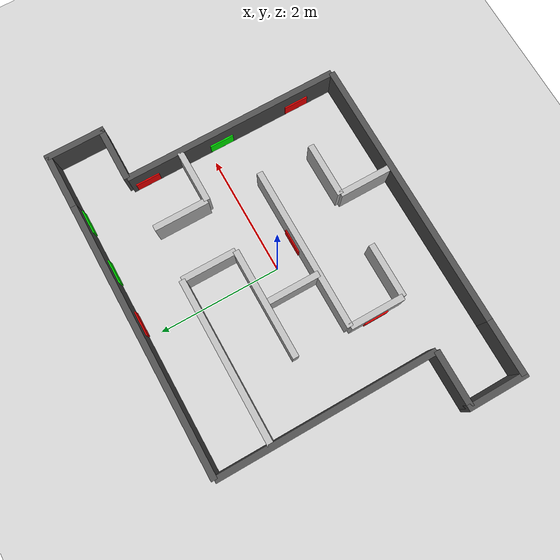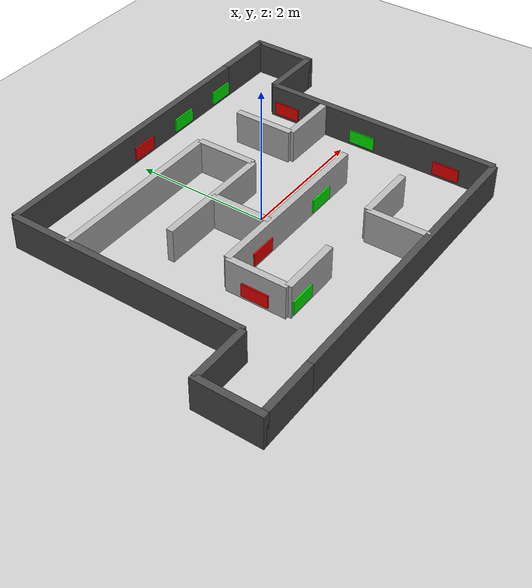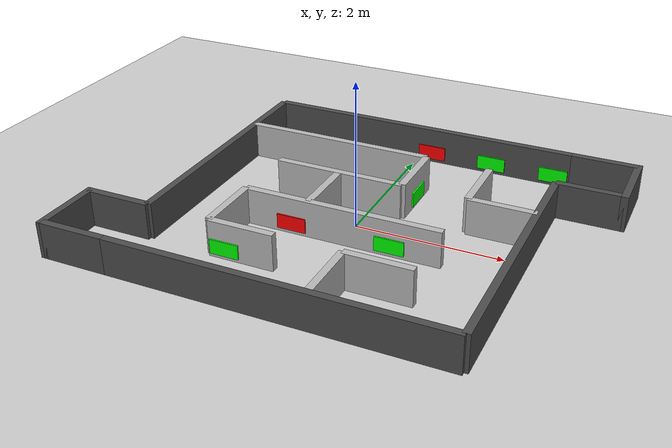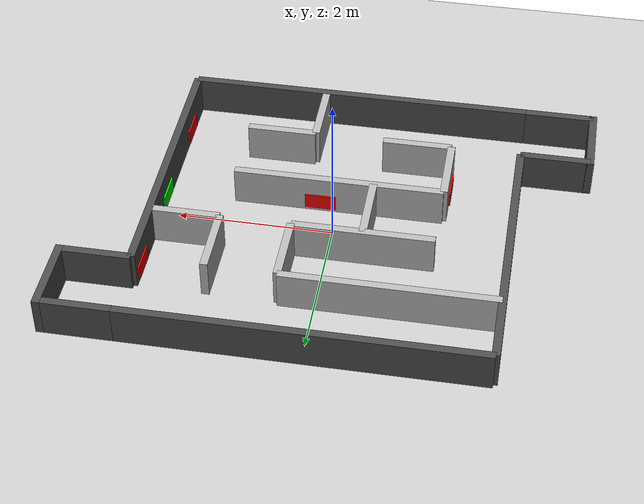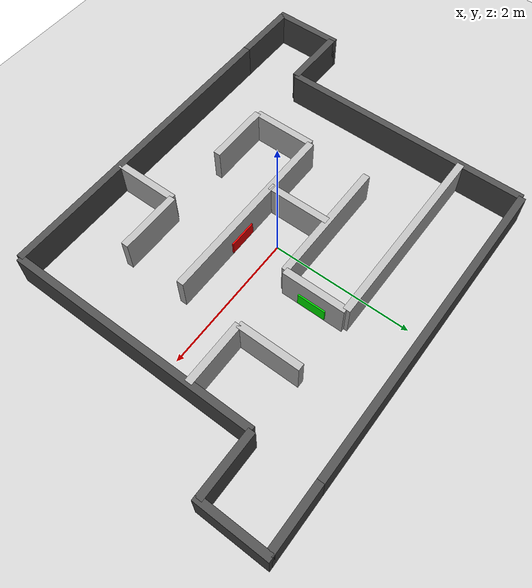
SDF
<?xml version="1.0" ?>
<sdf version="1.8">
  <world name="maze_world">
    <physics name="1ms" type="ignored">
      <max_step_size>0.001</max_step_size>
      <real_time_factor>1.0</real_time_factor>
    </physics>
    <plugin name="gz::sim::systems::Physics" filename="gz-sim-physics-system"/>
    <plugin name="gz::sim::systems::UserCommands" filename="gz-sim-user-commands-system"/>
    <plugin name="gz::sim::systems::SceneBroadcaster" filename="gz-sim-scene-broadcaster-system"/>
    <plugin name="gz::sim::systems::Sensors" filename="gz-sim-sensors-system">
      <render_engine>ogre2</render_engine>
    </plugin>

    <light type="directional" name="sun">
      <cast_shadows>true</cast_shadows>
      <pose>0 0 10 0 0 0</pose>
      <diffuse>0.8 0.8 0.8 1</diffuse>
      <specular>0.2 0.2 0.2 1</specular>
      <direction>-0.5 0.1 -0.9</direction>
    </light>

    <model name="ground_plane">
      <static>true</static>
      <link name="link">
        <collision name="collision"><geometry><plane><normal>0 0 1</normal></plane></geometry></collision>
        <visual name="visual">
          <geometry><plane><normal>0 0 1</normal></plane></geometry>
          <material><ambient>0.8 0.8 0.8 1</ambient><diffuse>0.8 0.8 0.8 1</diffuse></material>
        </visual>
      </link>
    </model>

    <model name="outer_wall_top"><static>true</static><pose>0 2.25 0.25 0 0 0</pose><link name="l"><visual name="v"><geometry><box><size>4.5 0.1 0.5</size></box></geometry><material><ambient>0.3 0.3 0.3 1</ambient></material></visual><collision name="c"><geometry><box><size>4.5 0.1 0.5</size></box></geometry></collision></link></model>
    <model name="outer_wall_bottom"><static>true</static><pose>0 -2.25 0.25 0 0 0</pose><link name="l"><visual name="v"><geometry><box><size>4.5 0.1 0.5</size></box></geometry><material><ambient>0.3 0.3 0.3 1</ambient></material></visual><collision name="c"><geometry><box><size>4.5 0.1 0.5</size></box></geometry></collision></link></model>
    <model name="outer_wall_left"><static>true</static><pose>-2.25 0.45 0.25 0 0 0</pose><link name="l"><visual name="v"><geometry><box><size>0.1 3.6 0.5</size></box></geometry><material><ambient>0.3 0.3 0.3 1</ambient></material></visual><collision name="c"><geometry><box><size>0.1 3.6 0.5</size></box></geometry></collision></link></model>
    <model name="outer_wall_right"><static>true</static><pose>2.25 -0.45 0.25 0 0 0</pose><link name="l"><visual name="v"><geometry><box><size>0.1 3.6 0.5</size></box></geometry><material><ambient>0.3 0.3 0.3 1</ambient></material></visual><collision name="c"><geometry><box><size>0.1 3.6 0.5</size></box></geometry></collision></link></model>

    <model name="inner_h1_len3"><static>true</static><pose>-0.9 1.35 0.25 0 0 0</pose><link name="l"><visual name="v"><geometry><box><size>2.7 0.1 0.5</size></box></geometry></visual><collision name="c"><geometry><box><size>2.7 0.1 0.5</size></box></geometry></collision></link></model>
    <model name="inner_h3_len3"><static>true</static><pose>0.0 -0.45 0.25 0 0 0</pose><link name="l"><visual name="v"><geometry><box><size>2.7 0.1 0.5</size></box></geometry></visual><collision name="c"><geometry><box><size>2.7 0.1 0.5</size></box></geometry></collision></link></model>
    <model name="inner_h2_len2"><static>true</static><pose>-0.45 0.45 0.25 0 0 0</pose><link name="l"><visual name="v"><geometry><box><size>1.8 0.1 0.5</size></box></geometry></visual><collision name="c"><geometry><box><size>1.8 0.1 0.5</size></box></geometry></collision></link></model>
    <model name="inner_v1_len1"><static>true</static><pose>-0.45 0.0 0.25 0 0 0</pose><link name="l"><visual name="v"><geometry><box><size>0.1 0.9 0.5</size></box></geometry></visual><collision name="c"><geometry><box><size>0.1 0.9 0.5</size></box></geometry></collision></link></model>
    <model name="inner_v2_len1"><static>true</static><pose>0.45 0.9 0.25 0 0 0</pose><link name="l"><visual name="v"><geometry><box><size>0.1 0.9 0.5</size></box></geometry></visual><collision name="c"><geometry><box><size>0.1 0.9 0.5</size></box></geometry></collision></link></model>
    <model name="inner_v3_len1"><static>true</static><pose>-1.35 -0.9 0.25 0 0 0</pose><link name="l"><visual name="v"><geometry><box><size>0.1 0.9 0.5</size></box></geometry></visual><collision name="c"><geometry><box><size>0.1 0.9 0.5</size></box></geometry></collision></link></model>
    <model name="inner_v4_len1"><static>true</static><pose>0.45 -1.8 0.25 0 0 0</pose><link name="l"><visual name="v"><geometry><box><size>0.1 0.9 0.5</size></box></geometry></visual><collision name="c"><geometry><box><size>0.1 0.9 0.5</size></box></geometry></collision></link></model>
    <model name="inner_v5_len1"><static>true</static><pose>1.35 0.9 0.25 0 0 0</pose><link name="l"><visual name="v"><geometry><box><size>0.1 0.9 0.5</size></box></geometry></visual><collision name="c"><geometry><box><size>0.1 0.9 0.5</size></box></geometry></collision></link></model>
    <model name="inner_h4_len1"><static>true</static><pose>-0.9 -1.35 0.25 0 0 0</pose><link name="l"><visual name="v"><geometry><box><size>0.9 0.1 0.5</size></box></geometry></visual><collision name="c"><geometry><box><size>0.9 0.1 0.5</size></box></geometry></collision></link></model>
    <model name="inner_h5_len1"><static>true</static><pose>0.9 -1.35 0.25 0 0 0</pose><link name="l"><visual name="v"><geometry><box><size>0.9 0.1 0.5</size></box></geometry></visual><collision name="c"><geometry><box><size>0.9 0.1 0.5</size></box></geometry></collision></link></model>
    <model name="inner_h6_len1"><static>true</static><pose>1.8 0.45 0.25 0 0 0</pose><link name="l"><visual name="v"><geometry><box><size>0.9 0.1 0.5</size></box></geometry></visual><collision name="c"><geometry><box><size>0.9 0.1 0.5</size></box></geometry></collision></link></model>

    <model name="sign_red_top1"><static>true</static><pose>0.225 2.19 0.15 0 0 0</pose><link name="l"><visual name="v"><geometry><box><size>0.4 0.02 0.2</size></box></geometry><material><ambient>1 0 0 1</ambient><diffuse>1 0 0 1</diffuse></material></visual></link></model>
    <model name="sign_green_top1"><static>true</static><pose>1.125 2.19 0.15 0 0 0</pose><link name="l"><visual name="v"><geometry><box><size>0.4 0.02 0.2</size></box></geometry><material><ambient>0 1 0 1</ambient><diffuse>0 1 0 1</diffuse></material></visual></link></model>
    <model name="sign_green_top2"><static>true</static><pose>2.025 2.19 0.15 0 0 0</pose><link name="l"><visual name="v"><geometry><box><size>0.4 0.02 0.2</size></box></geometry><material><ambient>0 1 0 1</ambient><diffuse>0 1 0 1</diffuse></material></visual></link></model>
    <model name="sign_red_right1"><static>true</static><pose>2.19 1.08 0.15 0 0 0</pose><link name="l"><visual name="v"><geometry><box><size>0.02 0.4 0.2</size></box></geometry><material><ambient>1 0 0 1</ambient><diffuse>1 0 0 1</diffuse></material></visual></link></model>
    <model name="sign_green_right1"><static>true</static><pose>2.19 -0.225 0.15 0 0 0</pose><link name="l"><visual name="v"><geometry><box><size>0.02 0.4 0.2</size></box></geometry><material><ambient>0 1 0 1</ambient><diffuse>0 1 0 1</diffuse></material></visual></link></model>
    <model name="sign_red_right2"><static>true</static><pose>2.19 -1.575 0.15 0 0 0</pose><link name="l"><visual name="v"><geometry><box><size>0.02 0.4 0.2</size></box></geometry><material><ambient>1 0 0 1</ambient><diffuse>1 0 0 1</diffuse></material></visual></link></model>
    <model name="sign_green_v2"><static>true</static><pose>0.51 0.9 0.15 0 0 0</pose><link name="l"><visual name="v"><geometry><box><size>0.02 0.4 0.2</size></box></geometry><material><ambient>0 1 0 1</ambient><diffuse>0 1 0 1</diffuse></material></visual></link></model>
    <model name="sign_red_h3_top"><static>true</static><pose>0.225 -0.39 0.15 0 0 0</pose><link name="l"><visual name="v"><geometry><box><size>0.4 0.02 0.2</size></box></geometry><material><ambient>1 0 0 1</ambient><diffuse>1 0 0 1</diffuse></material></visual></link></model>
    <model name="sign_red_h3_bottom"><static>true</static><pose>-0.675 -0.51 0.15 0 0 0</pose><link name="l"><visual name="v"><geometry><box><size>0.4 0.02 0.2</size></box></geometry><material><ambient>1 0 0 1</ambient><diffuse>1 0 0 1</diffuse></material></visual></link></model>
    <model name="sign_green_h3_bottom"><static>true</static><pose>0.675 -0.51 0.15 0 0 0</pose><link name="l"><visual name="v"><geometry><box><size>0.4 0.02 0.2</size></box></geometry><material><ambient>0 1 0 1</ambient><diffuse>0 1 0 1</diffuse></material></visual></link></model>
    <model name="sign_red_v3"><static>true</static><pose>-1.41 -0.9 0.15 0 0 0</pose><link name="l"><visual name="v"><geometry><box><size>0.02 0.4 0.2</size></box></geometry><material><ambient>1 0 0 1</ambient><diffuse>1 0 0 1</diffuse></material></visual></link></model>
    <model name="sign_green_h4_bottom"><static>true</static><pose>-1.125 -1.41 0.15 0 0 0</pose><link name="l"><visual name="v"><geometry><box><size>0.4 0.02 0.2</size></box></geometry><material><ambient>0 1 0 1</ambient><diffuse>0 1 0 1</diffuse></material></visual></link></model>

    <model name="entrance_room_top"><static>true</static><pose>-2.7 -1.35 0.25 0 0 0</pose><link name="l"><visual name="v"><geometry><box><size>0.9 0.1 0.5</size></box></geometry><material><ambient>0.3 0.3 0.3 1</ambient></material></visual><collision name="c"><geometry><box><size>0.9 0.1 0.5</size></box></geometry></collision></link></model>
    <model name="entrance_room_bottom"><static>true</static><pose>-2.7 -2.25 0.25 0 0 0</pose><link name="l"><visual name="v"><geometry><box><size>0.9 0.1 0.5</size></box></geometry><material><ambient>0.3 0.3 0.3 1</ambient></material></visual><collision name="c"><geometry><box><size>0.9 0.1 0.5</size></box></geometry></collision></link></model>
    <model name="entrance_room_left"><static>true</static><pose>-3.15 -1.8 0.25 0 0 0</pose><link name="l"><visual name="v"><geometry><box><size>0.1 1.0 0.5</size></box></geometry><material><ambient>0.3 0.3 0.3 1</ambient></material></visual><collision name="c"><geometry><box><size>0.1 1.0 0.5</size></box></geometry></collision></link></model>

    <model name="exit_room_top"><static>true</static><pose>2.7 2.25 0.25 0 0 0</pose><link name="l"><visual name="v"><geometry><box><size>0.9 0.1 0.5</size></box></geometry><material><ambient>0.3 0.3 0.3 1</ambient></material></visual><collision name="c"><geometry><box><size>0.9 0.1 0.5</size></box></geometry></collision></link></model>
    <model name="exit_room_bottom"><static>true</static><pose>2.7 1.35 0.25 0 0 0</pose><link name="l"><visual name="v"><geometry><box><size>0.9 0.1 0.5</size></box></geometry><material><ambient>0.3 0.3 0.3 1</ambient></material></visual><collision name="c"><geometry><box><size>0.9 0.1 0.5</size></box></geometry></collision></link></model>
    <model name="exit_room_right"><static>true</static><pose>3.15 1.8 0.25 0 0 0</pose><link name="l"><visual name="v"><geometry><box><size>0.1 1.0 0.5</size></box></geometry><material><ambient>0.3 0.3 0.3 1</ambient></material></visual><collision name="c"><geometry><box><size>0.1 1.0 0.5</size></box></geometry></collision></link></model>

  </world>
</sdf>
